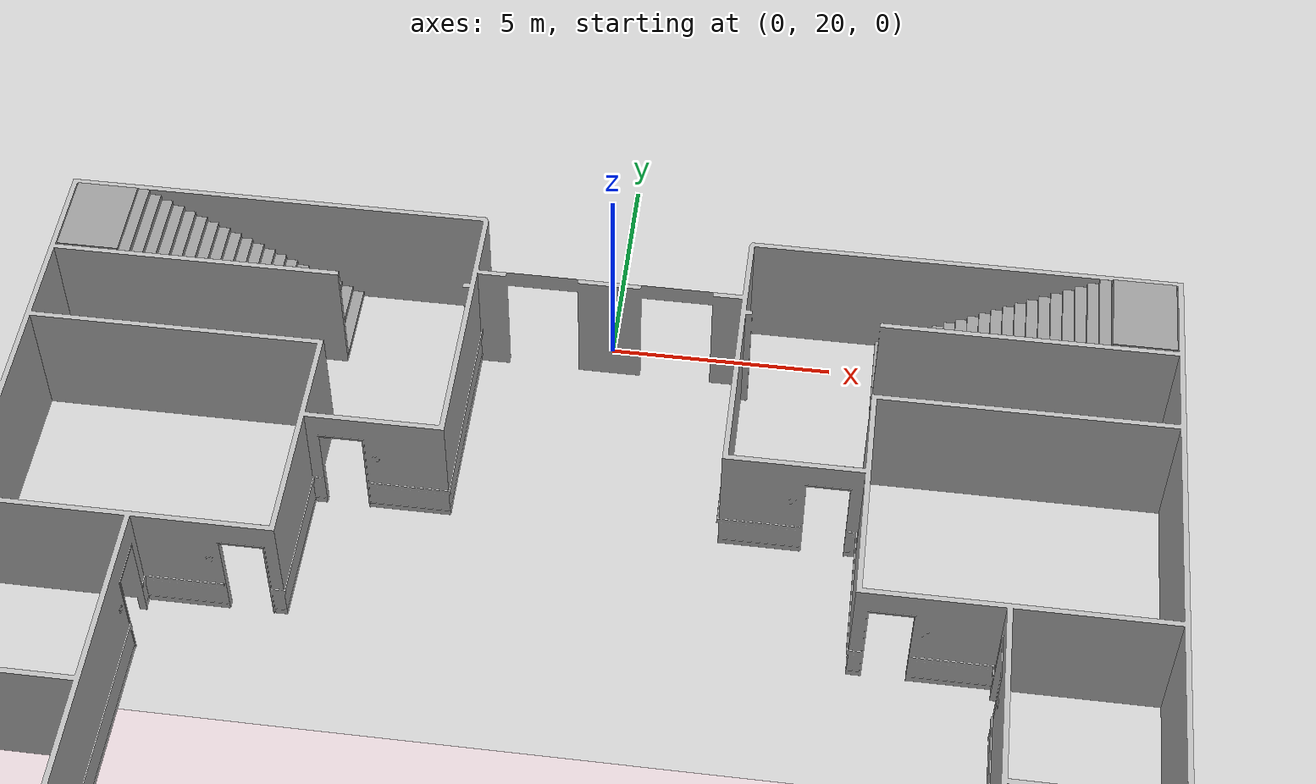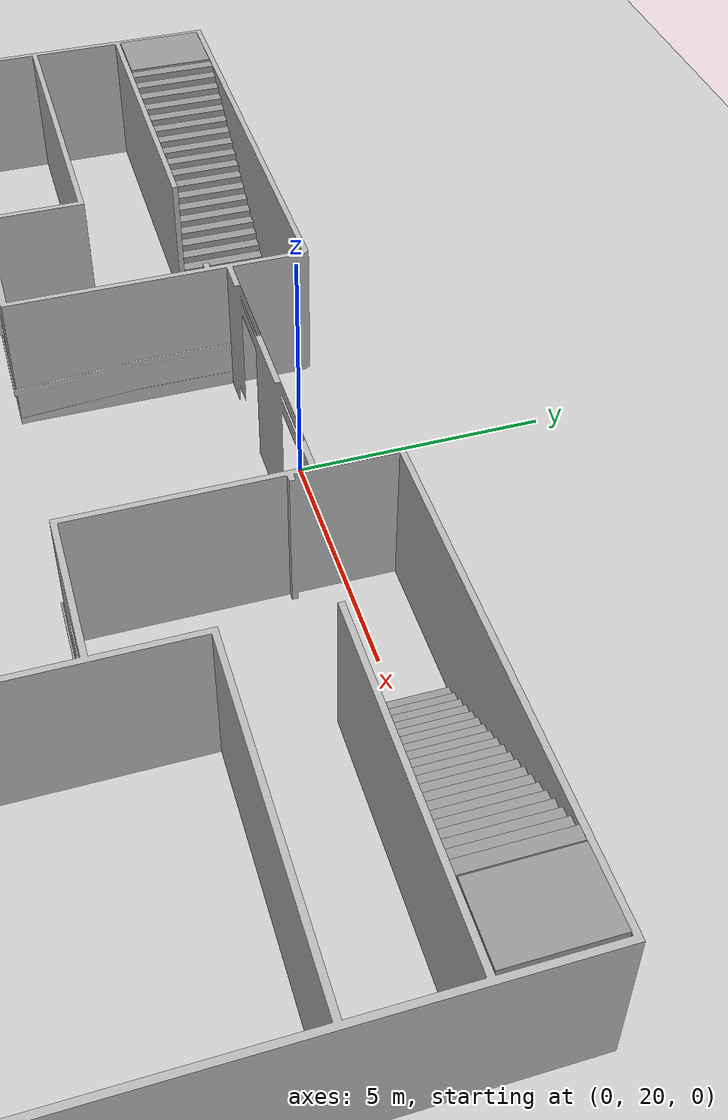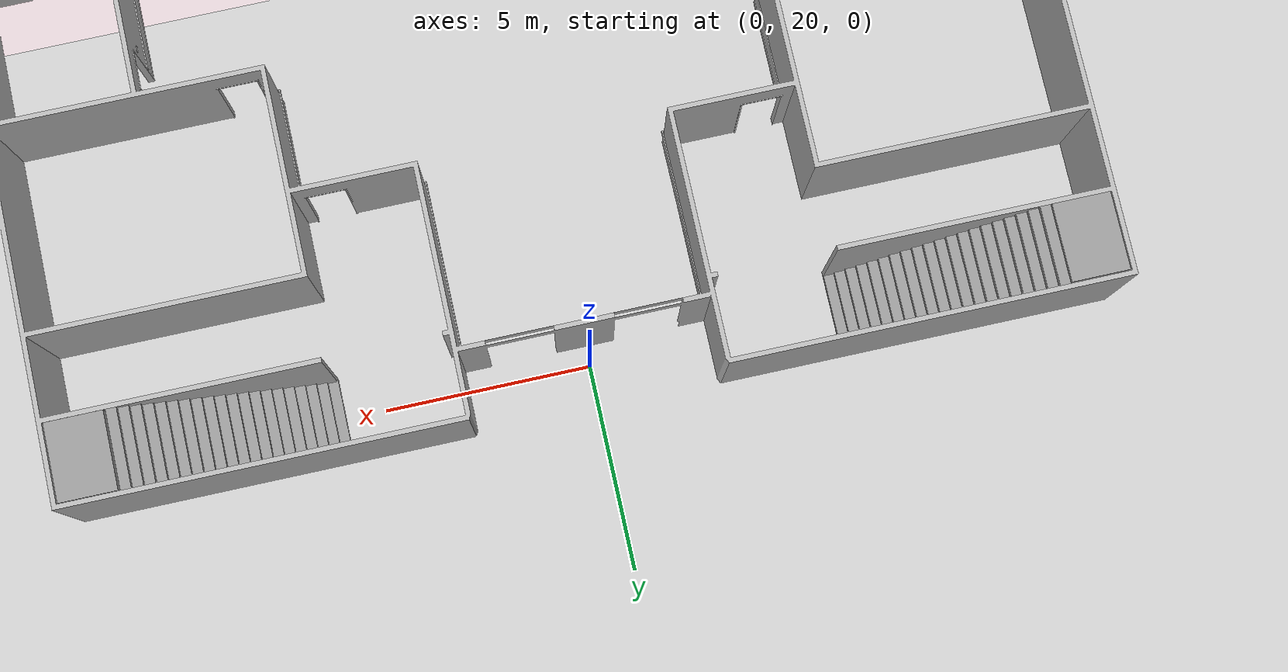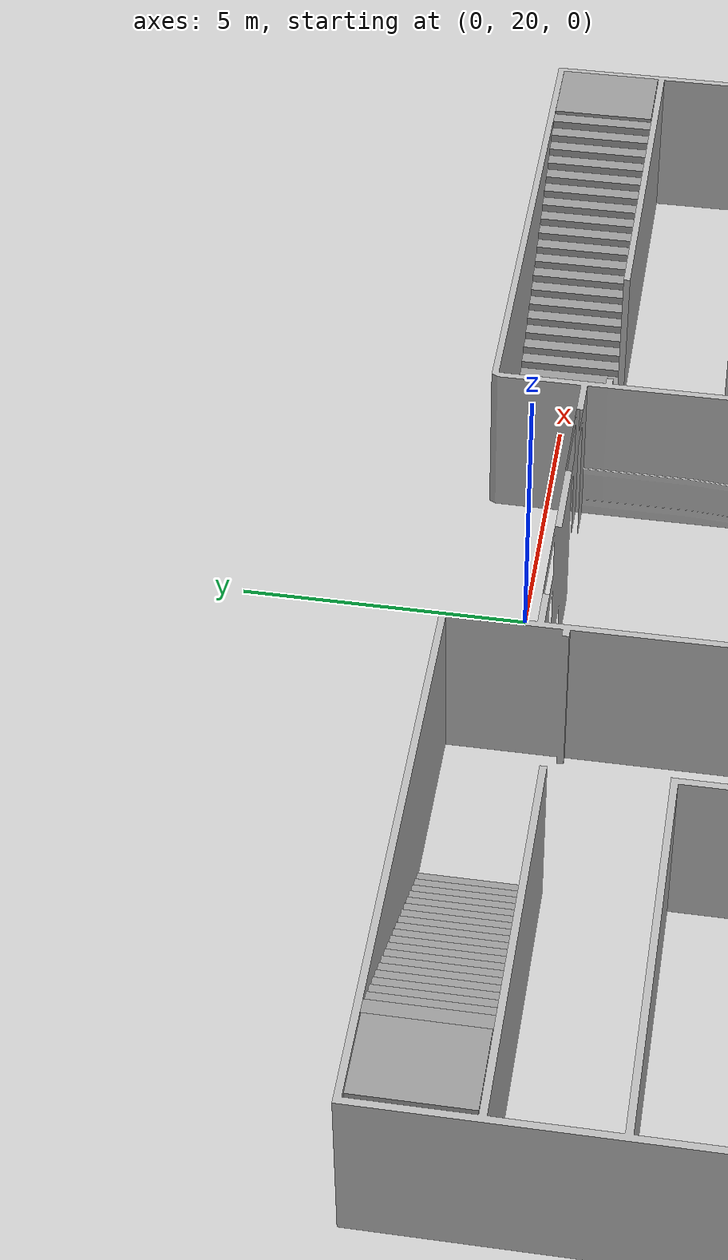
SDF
<sdf version="1.7">
 <world name="world">
  <gravity>0 0 -9.8</gravity>
  <physics name="default_physics" default="0" type="ode">
   <max_step_size>0.001</max_step_size>
   <real_time_factor>1</real_time_factor>
   <real_time_update_rate>1000</real_time_update_rate>
  </physics>
  <scene><ambient>0.6 0.6 0.6 1</ambient><background>0.4 0.4 0.4 1</background><shadows>0</shadows></scene>
  <light name="sun" type="directional">
   <pose>0 0 10 0 -0 0</pose>
   <diffuse>0.8 0.8 0.8 1</diffuse>
   <specular>0.2 0.2 0.2 1</specular>
   <attenuation>
    <range>1000</range>
    <constant>0.9</constant>
    <linear>0.01</linear>
    <quadratic>0.001</quadratic>
   </attenuation>
   <direction>-0.5 0.1 -0.9</direction>
   <spot><inner_angle>0</inner_angle><outer_angle>0</outer_angle><falloff>0</falloff></spot>
  </light>
  <model name="ground_plane">
   <static>1</static>
   <link name="link">
    <collision name="collision">
     <geometry><plane><normal>0 0 1</normal><size>100 100</size></plane></geometry>
     <surface><friction><ode><mu>100</mu><mu2>50</mu2></ode></friction></surface>
    </collision>
    <visual name="visual">
     <cast_shadows>0</cast_shadows>
     <geometry><plane><normal>0 0 1</normal><size>100 100</size></plane></geometry>
     <material>
      <script><uri>file://media/materials/scripts/gazebo.material</uri><name>Gazebo/Grey</name></script>
     </material>
    </visual>
   </link>
   <pose>0 0 -0.1 0 -0 0</pose>
  </model>
  <model name="aws_robomaker_hospital_floor_01_walls_1">
   <frame name="aws_robomaker_hospital_floor_01_walls::__model__" attached_to="aws_robomaker_hospital_floor_01_walls::link">
    <pose relative_to="__model__">0 0 0 -1.5707 -0 0</pose>
   </frame>
   <link name="aws_robomaker_hospital_floor_01_walls::link">
    <visual name="visual">
     <geometry>
      <mesh>
       <uri>model://aws_robomaker_hospital_floor_01_walls/meshes/aws_robomaker_hospital_floor_01_walls_visual.dae</uri>
      </mesh>
     </geometry>
    </visual>
    <collision name="collision">
     <geometry>
      <mesh>
       <uri>model://aws_robomaker_hospital_floor_01_walls/meshes/aws_robomaker_hospital_floor_01_walls_collision.dae</uri>
      </mesh>
     </geometry>
    </collision>
    <pose relative_to="aws_robomaker_hospital_floor_01_walls::__model__">0 0 0 0 -0 0</pose>
   </link>
   <static>1</static>
  </model>
  <magnetic_field>6e-06 2.3e-05 -4.2e-05</magnetic_field>
  <atmosphere type="adiabatic"/>
  <spherical_coordinates>
   <surface_model>EARTH_WGS84</surface_model>
   <latitude_deg>0</latitude_deg>
   <longitude_deg>0</longitude_deg>
   <elevation>0</elevation>
   <heading_deg>0</heading_deg>
  </spherical_coordinates>
  <model name="aws_hospital_world_custom_stairs">
   <pose>-0.01111 10.5021 0 0 -0 0</pose>
   <link name="Stairs_3">
    <visual name="Stairs_3_Visual_0">
     <pose>6.11548 9.50208 0.075 0 -0 1.5708</pose>
     <geometry><box><size>2 0.25 0.15</size></box></geometry>
     <material>
      <script><uri>file://media/materials/scripts/gazebo.material</uri><name>Gazebo/Grey</name></script>
      <ambient>1 1 1 1</ambient>
     </material>
     <meta><layer>0</layer></meta>
    </visual>
    <collision name="Stairs_3_Collision_0">
     <geometry><box><size>2 0.25 0.15</size></box></geometry>
     <pose>6.11548 9.50208 0.075 0 -0 1.5708</pose>
    </collision>
    <visual name="Stairs_3_Visual_1">
     <pose>6.36548 9.50208 0.225 0 -0 1.5708</pose>
     <geometry><box><size>2 0.25 0.15</size></box></geometry>
     <material>
      <script><uri>file://media/materials/scripts/gazebo.material</uri><name>Gazebo/Grey</name></script>
      <ambient>1 1 1 1</ambient>
     </material>
     <meta><layer>0</layer></meta>
    </visual>
    <collision name="Stairs_3_Collision_1">
     <geometry><box><size>2 0.25 0.15</size></box></geometry>
     <pose>6.36548 9.50208 0.225 0 -0 1.5708</pose>
    </collision>
    <visual name="Stairs_3_Visual_2">
     <pose>6.61548 9.50208 0.375 0 -0 1.5708</pose>
     <geometry><box><size>2 0.25 0.15</size></box></geometry>
     <material>
      <script><uri>file://media/materials/scripts/gazebo.material</uri><name>Gazebo/Grey</name></script>
      <ambient>1 1 1 1</ambient>
     </material>
     <meta><layer>0</layer></meta>
    </visual>
    <collision name="Stairs_3_Collision_2">
     <geometry><box><size>2 0.25 0.15</size></box></geometry>
     <pose>6.61548 9.50208 0.375 0 -0 1.5708</pose>
    </collision>
    <visual name="Stairs_3_Visual_3">
     <pose>6.86548 9.50208 0.525 0 -0 1.5708</pose>
     <geometry><box><size>2 0.25 0.15</size></box></geometry>
     <material>
      <script><uri>file://media/materials/scripts/gazebo.material</uri><name>Gazebo/Grey</name></script>
      <ambient>1 1 1 1</ambient>
     </material>
     <meta><layer>0</layer></meta>
    </visual>
    <collision name="Stairs_3_Collision_3">
     <geometry><box><size>2 0.25 0.15</size></box></geometry>
     <pose>6.86548 9.50208 0.525 0 -0 1.5708</pose>
    </collision>
    <visual name="Stairs_3_Visual_4">
     <pose>7.11548 9.50208 0.675 0 -0 1.5708</pose>
     <geometry><box><size>2 0.25 0.15</size></box></geometry>
     <material>
      <script><uri>file://media/materials/scripts/gazebo.material</uri><name>Gazebo/Grey</name></script>
      <ambient>1 1 1 1</ambient>
     </material>
     <meta><layer>0</layer></meta>
    </visual>
    <collision name="Stairs_3_Collision_4">
     <geometry><box><size>2 0.25 0.15</size></box></geometry>
     <pose>7.11548 9.50208 0.675 0 -0 1.5708</pose>
    </collision>
    <visual name="Stairs_3_Visual_5">
     <pose>7.36548 9.50208 0.825 0 -0 1.5708</pose>
     <geometry><box><size>2 0.25 0.15</size></box></geometry>
     <material>
      <script><uri>file://media/materials/scripts/gazebo.material</uri><name>Gazebo/Grey</name></script>
      <ambient>1 1 1 1</ambient>
     </material>
     <meta><layer>0</layer></meta>
    </visual>
    <collision name="Stairs_3_Collision_5">
     <geometry><box><size>2 0.25 0.15</size></box></geometry>
     <pose>7.36548 9.50208 0.825 0 -0 1.5708</pose>
    </collision>
    <visual name="Stairs_3_Visual_6">
     <pose>7.61548 9.50208 0.975 0 -0 1.5708</pose>
     <geometry><box><size>2 0.25 0.15</size></box></geometry>
     <material>
      <script><uri>file://media/materials/scripts/gazebo.material</uri><name>Gazebo/Grey</name></script>
      <ambient>1 1 1 1</ambient>
     </material>
     <meta><layer>0</layer></meta>
    </visual>
    <collision name="Stairs_3_Collision_6">
     <geometry><box><size>2 0.25 0.15</size></box></geometry>
     <pose>7.61548 9.50208 0.975 0 -0 1.5708</pose>
    </collision>
    <visual name="Stairs_3_Visual_7">
     <pose>7.86548 9.50208 1.125 0 -0 1.5708</pose>
     <geometry><box><size>2 0.25 0.15</size></box></geometry>
     <material>
      <script><uri>file://media/materials/scripts/gazebo.material</uri><name>Gazebo/Grey</name></script>
      <ambient>1 1 1 1</ambient>
     </material>
     <meta><layer>0</layer></meta>
    </visual>
    <collision name="Stairs_3_Collision_7">
     <geometry><box><size>2 0.25 0.15</size></box></geometry>
     <pose>7.86548 9.50208 1.125 0 -0 1.5708</pose>
    </collision>
    <visual name="Stairs_3_Visual_8">
     <pose>8.11548 9.50208 1.275 0 -0 1.5708</pose>
     <geometry><box><size>2 0.25 0.15</size></box></geometry>
     <material>
      <script><uri>file://media/materials/scripts/gazebo.material</uri><name>Gazebo/Grey</name></script>
      <ambient>1 1 1 1</ambient>
     </material>
     <meta><layer>0</layer></meta>
    </visual>
    <collision name="Stairs_3_Collision_8">
     <geometry><box><size>2 0.25 0.15</size></box></geometry>
     <pose>8.11548 9.50208 1.275 0 -0 1.5708</pose>
    </collision>
    <visual name="Stairs_3_Visual_9">
     <pose>8.36548 9.50208 1.425 0 -0 1.5708</pose>
     <geometry><box><size>2 0.25 0.15</size></box></geometry>
     <material>
      <script><uri>file://media/materials/scripts/gazebo.material</uri><name>Gazebo/Grey</name></script>
      <ambient>1 1 1 1</ambient>
     </material>
     <meta><layer>0</layer></meta>
    </visual>
    <collision name="Stairs_3_Collision_9">
     <geometry><box><size>2 0.25 0.15</size></box></geometry>
     <pose>8.36548 9.50208 1.425 0 -0 1.5708</pose>
    </collision>
    <visual name="Stairs_3_Visual_10">
     <pose>8.61548 9.50208 1.575 0 -0 1.5708</pose>
     <geometry><box><size>2 0.25 0.15</size></box></geometry>
     <material>
      <script><uri>file://media/materials/scripts/gazebo.material</uri><name>Gazebo/Grey</name></script>
      <ambient>1 1 1 1</ambient>
     </material>
     <meta><layer>0</layer></meta>
    </visual>
    <collision name="Stairs_3_Collision_10">
     <geometry><box><size>2 0.25 0.15</size></box></geometry>
     <pose>8.61548 9.50208 1.575 0 -0 1.5708</pose>
    </collision>
    <visual name="Stairs_3_Visual_11">
     <pose>8.86548 9.50208 1.725 0 -0 1.5708</pose>
     <geometry><box><size>2 0.25 0.15</size></box></geometry>
     <material>
      <script><uri>file://media/materials/scripts/gazebo.material</uri><name>Gazebo/Grey</name></script>
      <ambient>1 1 1 1</ambient>
     </material>
     <meta><layer>0</layer></meta>
    </visual>
    <collision name="Stairs_3_Collision_11">
     <geometry><box><size>2 0.25 0.15</size></box></geometry>
     <pose>8.86548 9.50208 1.725 0 -0 1.5708</pose>
    </collision>
    <visual name="Stairs_3_Visual_12">
     <pose>9.11548 9.50208 1.875 0 -0 1.5708</pose>
     <geometry><box><size>2 0.25 0.15</size></box></geometry>
     <material>
      <script><uri>file://media/materials/scripts/gazebo.material</uri><name>Gazebo/Grey</name></script>
      <ambient>1 1 1 1</ambient>
     </material>
     <meta><layer>0</layer></meta>
    </visual>
    <collision name="Stairs_3_Collision_12">
     <geometry><box><size>2 0.25 0.15</size></box></geometry>
     <pose>9.11548 9.50208 1.875 0 -0 1.5708</pose>
    </collision>
    <visual name="Stairs_3_Visual_13">
     <pose>9.36548 9.50208 2.025 0 -0 1.5708</pose>
     <geometry><box><size>2 0.25 0.15</size></box></geometry>
     <material>
      <script><uri>file://media/materials/scripts/gazebo.material</uri><name>Gazebo/Grey</name></script>
      <ambient>1 1 1 1</ambient>
     </material>
     <meta><layer>0</layer></meta>
    </visual>
    <collision name="Stairs_3_Collision_13">
     <geometry><box><size>2 0.25 0.15</size></box></geometry>
     <pose>9.36548 9.50208 2.025 0 -0 1.5708</pose>
    </collision>
    <visual name="Stairs_3_Visual_14">
     <pose>9.61548 9.50208 2.175 0 -0 1.5708</pose>
     <geometry><box><size>2 0.25 0.15</size></box></geometry>
     <material>
      <script><uri>file://media/materials/scripts/gazebo.material</uri><name>Gazebo/Grey</name></script>
      <ambient>1 1 1 1</ambient>
     </material>
     <meta><layer>0</layer></meta>
    </visual>
    <collision name="Stairs_3_Collision_14">
     <geometry><box><size>2 0.25 0.15</size></box></geometry>
     <pose>9.61548 9.50208 2.175 0 -0 1.5708</pose>
    </collision>
    <visual name="Stairs_3_Visual_15">
     <pose>9.86548 9.50208 2.325 0 -0 1.5708</pose>
     <geometry><box><size>2 0.25 0.15</size></box></geometry>
     <material>
      <script><uri>file://media/materials/scripts/gazebo.material</uri><name>Gazebo/Grey</name></script>
      <ambient>1 1 1 1</ambient>
     </material>
     <meta><layer>0</layer></meta>
    </visual>
    <collision name="Stairs_3_Collision_15">
     <geometry><box><size>2 0.25 0.15</size></box></geometry>
     <pose>9.86548 9.50208 2.325 0 -0 1.5708</pose>
    </collision>
    <visual name="Stairs_3_Visual_16">
     <pose>10.1155 9.50208 2.475 0 -0 1.5708</pose>
     <geometry><box><size>2 0.25 0.15</size></box></geometry>
     <material>
      <script><uri>file://media/materials/scripts/gazebo.material</uri><name>Gazebo/Grey</name></script>
      <ambient>1 1 1 1</ambient>
     </material>
     <meta><layer>0</layer></meta>
    </visual>
    <collision name="Stairs_3_Collision_16">
     <geometry><box><size>2 0.25 0.15</size></box></geometry>
     <pose>10.1155 9.50208 2.475 0 -0 1.5708</pose>
    </collision>
    <visual name="Stairs_3_Visual_17">
     <pose>10.3655 9.50208 2.625 0 -0 1.5708</pose>
     <geometry><box><size>2 0.25 0.15</size></box></geometry>
     <material>
      <script><uri>file://media/materials/scripts/gazebo.material</uri><name>Gazebo/Grey</name></script>
      <ambient>1 1 1 1</ambient>
     </material>
     <meta><layer>0</layer></meta>
    </visual>
    <collision name="Stairs_3_Collision_17">
     <geometry><box><size>2 0.25 0.15</size></box></geometry>
     <pose>10.3655 9.50208 2.625 0 -0 1.5708</pose>
    </collision>
    <visual name="Stairs_3_Visual_18">
     <pose>10.6155 9.50208 2.775 0 -0 1.5708</pose>
     <geometry><box><size>2 0.25 0.15</size></box></geometry>
     <material>
      <script><uri>file://media/materials/scripts/gazebo.material</uri><name>Gazebo/Grey</name></script>
      <ambient>1 1 1 1</ambient>
     </material>
     <meta><layer>0</layer></meta>
    </visual>
    <collision name="Stairs_3_Collision_18">
     <geometry><box><size>2 0.25 0.15</size></box></geometry>
     <pose>10.6155 9.50208 2.775 0 -0 1.5708</pose>
    </collision>
    <visual name="Stairs_3_Visual_19">
     <pose>10.8655 9.50208 2.925 0 -0 1.5708</pose>
     <geometry><box><size>2 0.25 0.15</size></box></geometry>
     <material>
      <script><uri>file://media/materials/scripts/gazebo.material</uri><name>Gazebo/Grey</name></script>
      <ambient>1 1 1 1</ambient>
     </material>
     <meta><layer>0</layer></meta>
    </visual>
    <collision name="Stairs_3_Collision_19">
     <geometry><box><size>2 0.25 0.15</size></box></geometry>
     <pose>10.8655 9.50208 2.925 0 -0 1.5708</pose>
    </collision>
   </link>
   <link name="Stairs_5">
    <visual name="Stairs_5_Visual_0">
     <pose>-6.11548 9.4651 0.075 0 0 -1.5708</pose>
     <geometry><box><size>2 0.25 0.15</size></box></geometry>
     <material>
      <script><uri>file://media/materials/scripts/gazebo.material</uri><name>Gazebo/Grey</name></script>
      <ambient>1 1 1 1</ambient>
     </material>
     <meta><layer>0</layer></meta>
    </visual>
    <collision name="Stairs_5_Collision_0">
     <geometry><box><size>2 0.25 0.15</size></box></geometry>
     <pose>-6.11548 9.4651 0.075 0 0 -1.5708</pose>
    </collision>
    <visual name="Stairs_5_Visual_1">
     <pose>-6.36548 9.4651 0.225 0 0 -1.5708</pose>
     <geometry><box><size>2 0.25 0.15</size></box></geometry>
     <material>
      <script><uri>file://media/materials/scripts/gazebo.material</uri><name>Gazebo/Grey</name></script>
      <ambient>1 1 1 1</ambient>
     </material>
     <meta><layer>0</layer></meta>
    </visual>
    <collision name="Stairs_5_Collision_1">
     <geometry><box><size>2 0.25 0.15</size></box></geometry>
     <pose>-6.36548 9.4651 0.225 0 0 -1.5708</pose>
    </collision>
    <visual name="Stairs_5_Visual_2">
     <pose>-6.61548 9.4651 0.375 0 0 -1.5708</pose>
     <geometry><box><size>2 0.25 0.15</size></box></geometry>
     <material>
      <script><uri>file://media/materials/scripts/gazebo.material</uri><name>Gazebo/Grey</name></script>
      <ambient>1 1 1 1</ambient>
     </material>
     <meta><layer>0</layer></meta>
    </visual>
    <collision name="Stairs_5_Collision_2">
     <geometry><box><size>2 0.25 0.15</size></box></geometry>
     <pose>-6.61548 9.4651 0.375 0 0 -1.5708</pose>
    </collision>
    <visual name="Stairs_5_Visual_3">
     <pose>-6.86548 9.4651 0.525 0 0 -1.5708</pose>
     <geometry><box><size>2 0.25 0.15</size></box></geometry>
     <material>
      <script><uri>file://media/materials/scripts/gazebo.material</uri><name>Gazebo/Grey</name></script>
      <ambient>1 1 1 1</ambient>
     </material>
     <meta><layer>0</layer></meta>
    </visual>
    <collision name="Stairs_5_Collision_3">
     <geometry><box><size>2 0.25 0.15</size></box></geometry>
     <pose>-6.86548 9.4651 0.525 0 0 -1.5708</pose>
    </collision>
    <visual name="Stairs_5_Visual_4">
     <pose>-7.11548 9.4651 0.675 0 0 -1.5708</pose>
     <geometry><box><size>2 0.25 0.15</size></box></geometry>
     <material>
      <script><uri>file://media/materials/scripts/gazebo.material</uri><name>Gazebo/Grey</name></script>
      <ambient>1 1 1 1</ambient>
     </material>
     <meta><layer>0</layer></meta>
    </visual>
    <collision name="Stairs_5_Collision_4">
     <geometry><box><size>2 0.25 0.15</size></box></geometry>
     <pose>-7.11548 9.4651 0.675 0 0 -1.5708</pose>
    </collision>
    <visual name="Stairs_5_Visual_5">
     <pose>-7.36548 9.4651 0.825 0 0 -1.5708</pose>
     <geometry><box><size>2 0.25 0.15</size></box></geometry>
     <material>
      <script><uri>file://media/materials/scripts/gazebo.material</uri><name>Gazebo/Grey</name></script>
      <ambient>1 1 1 1</ambient>
     </material>
     <meta><layer>0</layer></meta>
    </visual>
    <collision name="Stairs_5_Collision_5">
     <geometry><box><size>2 0.25 0.15</size></box></geometry>
     <pose>-7.36548 9.4651 0.825 0 0 -1.5708</pose>
    </collision>
    <visual name="Stairs_5_Visual_6">
     <pose>-7.61548 9.4651 0.975 0 0 -1.5708</pose>
     <geometry><box><size>2 0.25 0.15</size></box></geometry>
     <material>
      <script><uri>file://media/materials/scripts/gazebo.material</uri><name>Gazebo/Grey</name></script>
      <ambient>1 1 1 1</ambient>
     </material>
     <meta><layer>0</layer></meta>
    </visual>
    <collision name="Stairs_5_Collision_6">
     <geometry><box><size>2 0.25 0.15</size></box></geometry>
     <pose>-7.61548 9.4651 0.975 0 0 -1.5708</pose>
    </collision>
    <visual name="Stairs_5_Visual_7">
     <pose>-7.86548 9.4651 1.125 0 0 -1.5708</pose>
     <geometry><box><size>2 0.25 0.15</size></box></geometry>
     <material>
      <script><uri>file://media/materials/scripts/gazebo.material</uri><name>Gazebo/Grey</name></script>
      <ambient>1 1 1 1</ambient>
     </material>
     <meta><layer>0</layer></meta>
    </visual>
    <collision name="Stairs_5_Collision_7">
     <geometry><box><size>2 0.25 0.15</size></box></geometry>
     <pose>-7.86548 9.4651 1.125 0 0 -1.5708</pose>
    </collision>
    <visual name="Stairs_5_Visual_8">
     <pose>-8.11548 9.4651 1.275 0 0 -1.5708</pose>
     <geometry><box><size>2 0.25 0.15</size></box></geometry>
     <material>
      <script><uri>file://media/materials/scripts/gazebo.material</uri><name>Gazebo/Grey</name></script>
      <ambient>1 1 1 1</ambient>
     </material>
     <meta><layer>0</layer></meta>
    </visual>
    <collision name="Stairs_5_Collision_8">
     <geometry><box><size>2 0.25 0.15</size></box></geometry>
     <pose>-8.11548 9.4651 1.275 0 0 -1.5708</pose>
    </collision>
    <visual name="Stairs_5_Visual_9">
     <pose>-8.36548 9.4651 1.425 0 0 -1.5708</pose>
     <geometry><box><size>2 0.25 0.15</size></box></geometry>
     <material>
      <script><uri>file://media/materials/scripts/gazebo.material</uri><name>Gazebo/Grey</name></script>
      <ambient>1 1 1 1</ambient>
     </material>
     <meta><layer>0</layer></meta>
    </visual>
    <collision name="Stairs_5_Collision_9">
     <geometry><box><size>2 0.25 0.15</size></box></geometry>
     <pose>-8.36548 9.4651 1.425 0 0 -1.5708</pose>
    </collision>
    <visual name="Stairs_5_Visual_10">
     <pose>-8.61548 9.4651 1.575 0 0 -1.5708</pose>
     <geometry><box><size>2 0.25 0.15</size></box></geometry>
     <material>
      <script><uri>file://media/materials/scripts/gazebo.material</uri><name>Gazebo/Grey</name></script>
      <ambient>1 1 1 1</ambient>
     </material>
     <meta><layer>0</layer></meta>
    </visual>
    <collision name="Stairs_5_Collision_10">
     <geometry><box><size>2 0.25 0.15</size></box></geometry>
     <pose>-8.61548 9.4651 1.575 0 0 -1.5708</pose>
    </collision>
    <visual name="Stairs_5_Visual_11">
     <pose>-8.86548 9.4651 1.725 0 0 -1.5708</pose>
     <geometry><box><size>2 0.25 0.15</size></box></geometry>
     <material>
      <script><uri>file://media/materials/scripts/gazebo.material</uri><name>Gazebo/Grey</name></script>
      <ambient>1 1 1 1</ambient>
     </material>
     <meta><layer>0</layer></meta>
    </visual>
    <collision name="Stairs_5_Collision_11">
     <geometry><box><size>2 0.25 0.15</size></box></geometry>
     <pose>-8.86548 9.4651 1.725 0 0 -1.5708</pose>
    </collision>
    <visual name="Stairs_5_Visual_12">
     <pose>-9.11548 9.4651 1.875 0 0 -1.5708</pose>
     <geometry><box><size>2 0.25 0.15</size></box></geometry>
     <material>
      <script><uri>file://media/materials/scripts/gazebo.material</uri><name>Gazebo/Grey</name></script>
      <ambient>1 1 1 1</ambient>
     </material>
     <meta><layer>0</layer></meta>
    </visual>
    <collision name="Stairs_5_Collision_12">
     <geometry><box><size>2 0.25 0.15</size></box></geometry>
     <pose>-9.11548 9.4651 1.875 0 0 -1.5708</pose>
    </collision>
    <visual name="Stairs_5_Visual_13">
     <pose>-9.36548 9.4651 2.025 0 0 -1.5708</pose>
     <geometry><box><size>2 0.25 0.15</size></box></geometry>
     <material>
      <script><uri>file://media/materials/scripts/gazebo.material</uri><name>Gazebo/Grey</name></script>
      <ambient>1 1 1 1</ambient>
     </material>
     <meta><layer>0</layer></meta>
    </visual>
    <collision name="Stairs_5_Collision_13">
     <geometry><box><size>2 0.25 0.15</size></box></geometry>
     <pose>-9.36548 9.4651 2.025 0 0 -1.5708</pose>
    </collision>
    <visual name="Stairs_5_Visual_14">
     <pose>-9.61548 9.4651 2.175 0 0 -1.5708</pose>
     <geometry><box><size>2 0.25 0.15</size></box></geometry>
     <material>
      <script><uri>file://media/materials/scripts/gazebo.material</uri><name>Gazebo/Grey</name></script>
      <ambient>1 1 1 1</ambient>
     </material>
     <meta><layer>0</layer></meta>
    </visual>
    <collision name="Stairs_5_Collision_14">
     <geometry><box><size>2 0.25 0.15</size></box></geometry>
     <pose>-9.61548 9.4651 2.175 0 0 -1.5708</pose>
    </collision>
    <visual name="Stairs_5_Visual_15">
     <pose>-9.86548 9.4651 2.325 0 0 -1.5708</pose>
     <geometry><box><size>2 0.25 0.15</size></box></geometry>
     <material>
      <script><uri>file://media/materials/scripts/gazebo.material</uri><name>Gazebo/Grey</name></script>
      <ambient>1 1 1 1</ambient>
     </material>
     <meta><layer>0</layer></meta>
    </visual>
    <collision name="Stairs_5_Collision_15">
     <geometry><box><size>2 0.25 0.15</size></box></geometry>
     <pose>-9.86548 9.4651 2.325 0 0 -1.5708</pose>
    </collision>
    <visual name="Stairs_5_Visual_16">
     <pose>-10.1155 9.4651 2.475 0 0 -1.5708</pose>
     <geometry><box><size>2 0.25 0.15</size></box></geometry>
     <material>
      <script><uri>file://media/materials/scripts/gazebo.material</uri><name>Gazebo/Grey</name></script>
      <ambient>1 1 1 1</ambient>
     </material>
     <meta><layer>0</layer></meta>
    </visual>
    <collision name="Stairs_5_Collision_16">
     <geometry><box><size>2 0.25 0.15</size></box></geometry>
     <pose>-10.1155 9.4651 2.475 0 0 -1.5708</pose>
    </collision>
    <visual name="Stairs_5_Visual_17">
     <pose>-10.3655 9.4651 2.625 0 0 -1.5708</pose>
     <geometry><box><size>2 0.25 0.15</size></box></geometry>
     <material>
      <script><uri>file://media/materials/scripts/gazebo.material</uri><name>Gazebo/Grey</name></script>
      <ambient>1 1 1 1</ambient>
     </material>
     <meta><layer>0</layer></meta>
    </visual>
    <collision name="Stairs_5_Collision_17">
     <geometry><box><size>2 0.25 0.15</size></box></geometry>
     <pose>-10.3655 9.4651 2.625 0 0 -1.5708</pose>
    </collision>
    <visual name="Stairs_5_Visual_18">
     <pose>-10.6155 9.4651 2.775 0 0 -1.5708</pose>
     <geometry><box><size>2 0.25 0.15</size></box></geometry>
     <material>
      <script><uri>file://media/materials/scripts/gazebo.material</uri><name>Gazebo/Grey</name></script>
      <ambient>1 1 1 1</ambient>
     </material>
     <meta><layer>0</layer></meta>
    </visual>
    <collision name="Stairs_5_Collision_18">
     <geometry><box><size>2 0.25 0.15</size></box></geometry>
     <pose>-10.6155 9.4651 2.775 0 0 -1.5708</pose>
    </collision>
    <visual name="Stairs_5_Visual_19">
     <pose>-10.8655 9.4651 2.925 0 0 -1.5708</pose>
     <geometry><box><size>2 0.25 0.15</size></box></geometry>
     <material>
      <script><uri>file://media/materials/scripts/gazebo.material</uri><name>Gazebo/Grey</name></script>
      <ambient>1 1 1 1</ambient>
     </material>
     <meta><layer>0</layer></meta>
    </visual>
    <collision name="Stairs_5_Collision_19">
     <geometry><box><size>2 0.25 0.15</size></box></geometry>
     <pose>-10.8655 9.4651 2.925 0 0 -1.5708</pose>
    </collision>
   </link>
   <static>1</static>
  </model>
  <model name="unit_box">
   <pose>11.6699 20.1068 -0.356665 0 0 -0.000658</pose>
   <link name="link">
    <inertial>
     <mass>1</mass>
     <inertia>
      <ixx>0.166667</ixx>
      <ixy>0</ixy>
      <ixz>0</ixz>
      <iyy>0.166667</iyy>
      <iyz>0</iyz>
      <izz>0.166667</izz>
     </inertia>
    </inertial>
    <collision name="collision"><geometry><box><size>1 1 1</size></box></geometry></collision>
    <visual name="visual">
     <geometry><box><size>1 1 1</size></box></geometry>
     <material>
      <script><name>Gazebo/Grey</name><uri>file://media/materials/scripts/gazebo.material</uri></script>
     </material>
    </visual>
   </link>
  </model>
  <model name="stair_floor">
   <link name="link">
    <inertial>
     <mass>7.439</mass>
     <inertia><ixx>7.35557</ixx><ixy>0</ixy><ixz>0</ixz><iyy>6.38511</iyy><iyz>0</iyz><izz>3.33707</izz></inertia>
    </inertial>
    <pose>0.103428 -0.152889 1.09171 0 -0 0</pose>
    <visual name="visual">
     <geometry><box><size>1.3816 1.86394 2.89675</size></box></geometry>
     <material>
      <script><name>Gazebo/Grey</name><uri>file://media/materials/scripts/gazebo.material</uri></script>
      <shader type="pixel"/>
     </material>
    </visual>
    <collision name="collision">
     <geometry><box><size>1.3816 1.86394 2.89675</size></box></geometry>
     <surface>
      <friction>
       <ode><mu>1</mu><mu2>1</mu2><fdir1>0 0 0</fdir1><slip1>0</slip1><slip2>0</slip2></ode>
       <torsional>
        <coefficient>1</coefficient>
        <patch_radius>0</patch_radius>
        <surface_radius>0</surface_radius>
        <use_patch_radius>1</use_patch_radius>
        <ode><slip>0</slip></ode>
       </torsional>
      </friction>
      <bounce><restitution_coefficient>0</restitution_coefficient><threshold>1e+06</threshold></bounce>
      <contact>
       <collide_without_contact>0</collide_without_contact>
       <collide_without_contact_bitmask>1</collide_without_contact_bitmask>
       <collide_bitmask>1</collide_bitmask>
       <ode>
        <soft_cfm>0</soft_cfm>
        <soft_erp>0.2</soft_erp>
        <kp>1e+13</kp>
        <kd>1</kd>
        <max_vel>0.01</max_vel>
        <min_depth>0</min_depth>
       </ode>
       <bullet>
        <split_impulse>1</split_impulse>
        <split_impulse_penetration_threshold>-0.01</split_impulse_penetration_threshold>
        <soft_cfm>0</soft_cfm>
        <soft_erp>0.2</soft_erp>
        <kp>1e+13</kp>
        <kd>1</kd>
       </bullet>
      </contact>
     </surface>
    </collision>
   </link>
   <static>1</static>
   <pose>11.609 20.1538 0.5 0 -0 0</pose>
  </model>
  <model name="stair_floor_clone">
   <link name="link">
    <inertial>
     <mass>7.439</mass>
     <inertia><ixx>7.35557</ixx><ixy>0</ixy><ixz>0</ixz><iyy>6.38511</iyy><iyz>0</iyz><izz>3.33707</izz></inertia>
    </inertial>
    <pose>0.103428 -0.152889 1.09171 0 -0 0</pose>
    <visual name="visual">
     <geometry><box><size>1.3816 1.86394 2.89675</size></box></geometry>
     <material>
      <script><name>Gazebo/Grey</name><uri>file://media/materials/scripts/gazebo.material</uri></script>
      <shader type="pixel"/>
     </material>
    </visual>
    <collision name="collision">
     <geometry><box><size>1.3816 1.86394 2.89675</size></box></geometry>
     <surface>
      <friction>
       <ode><mu>1</mu><mu2>1</mu2><fdir1>0 0 0</fdir1><slip1>0</slip1><slip2>0</slip2></ode>
       <torsional>
        <coefficient>1</coefficient>
        <patch_radius>0</patch_radius>
        <surface_radius>0</surface_radius>
        <use_patch_radius>1</use_patch_radius>
        <ode><slip>0</slip></ode>
       </torsional>
      </friction>
      <bounce><restitution_coefficient>0</restitution_coefficient><threshold>1e+06</threshold></bounce>
      <contact>
       <collide_without_contact>0</collide_without_contact>
       <collide_without_contact_bitmask>1</collide_without_contact_bitmask>
       <collide_bitmask>1</collide_bitmask>
       <ode>
        <soft_cfm>0</soft_cfm>
        <soft_erp>0.2</soft_erp>
        <kp>1e+13</kp>
        <kd>1</kd>
        <max_vel>0.01</max_vel>
        <min_depth>0</min_depth>
       </ode>
       <bullet>
        <split_impulse>1</split_impulse>
        <split_impulse_penetration_threshold>-0.01</split_impulse_penetration_threshold>
        <soft_cfm>0</soft_cfm>
        <soft_erp>0.2</soft_erp>
        <kp>1e+13</kp>
        <kd>1</kd>
       </bullet>
      </contact>
     </surface>
    </collision>
   </link>
   <static>1</static>
   <pose>-11.8157 20.1429 0.5 0 -0 0</pose>
  </model>
 </world>
</sdf>
